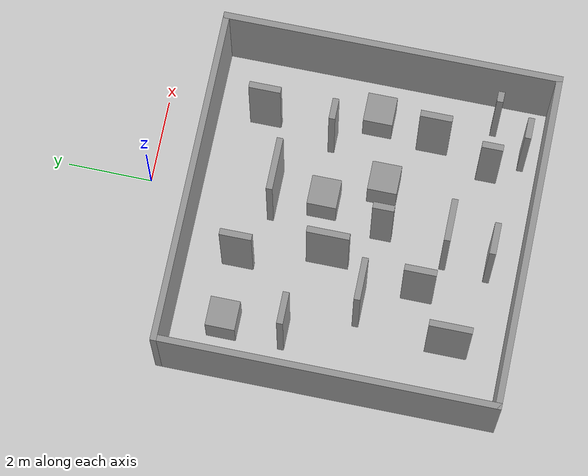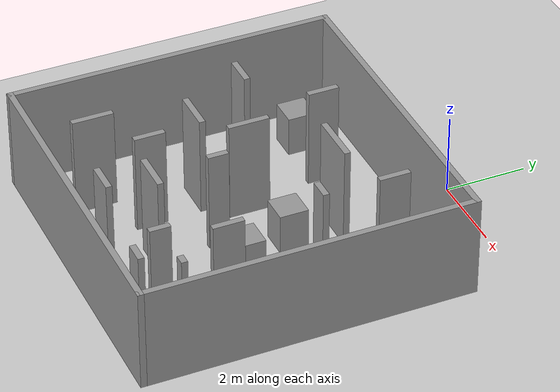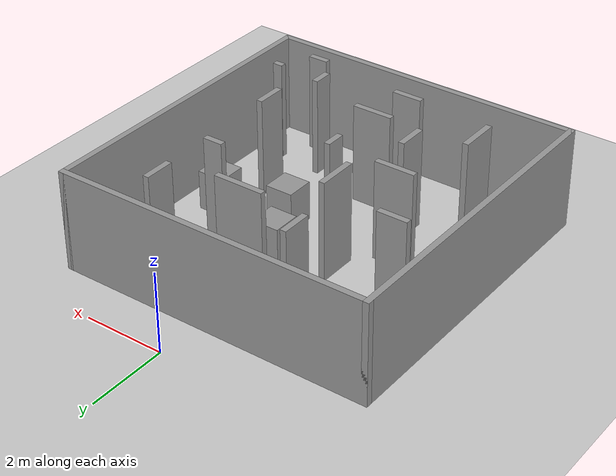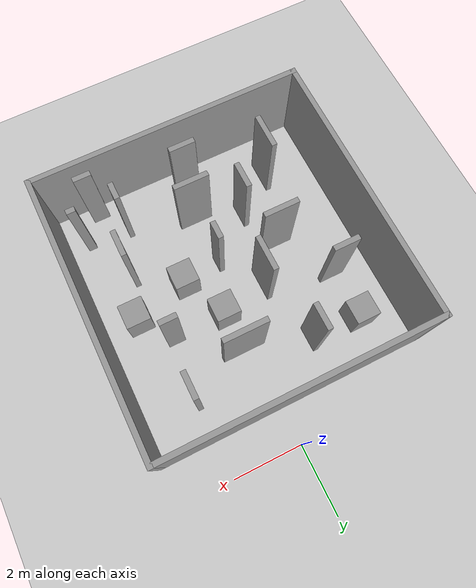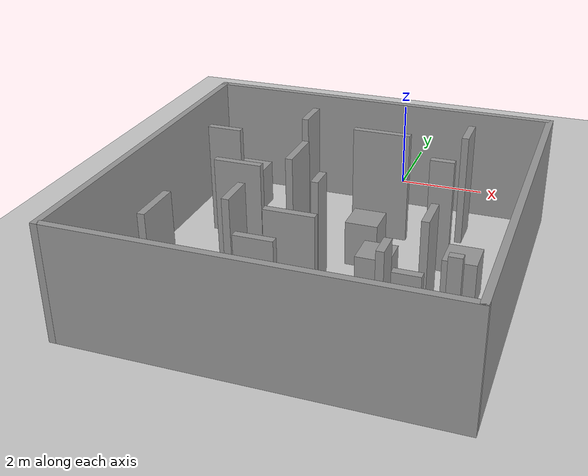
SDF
<sdf version="1.7">
 <world name="default">
  <light name="sun" type="directional">
   <pose>0 0 10 0 -0 0</pose>
   <diffuse>0.8 0.8 0.8 1</diffuse>
   <specular>0.2 0.2 0.2 1</specular>
   <attenuation>
    <range>1000</range>
    <constant>0.9</constant>
    <linear>0.01</linear>
    <quadratic>0.001</quadratic>
   </attenuation>
   <direction>-0.5 0.1 -0.9</direction>
   <spot><inner_angle>0</inner_angle><outer_angle>0</outer_angle><falloff>0</falloff></spot>
  </light>
  <model name="ground_plane">
   <static>1</static>
   <link name="link">
    <collision name="collision">
     <geometry><plane><normal>0 0 1</normal><size>100 100</size></plane></geometry>
     <surface>
      <contact><collide_bitmask>65535</collide_bitmask></contact>
      <friction><ode><mu>100</mu><mu2>50</mu2></ode></friction>
     </surface>
    </collision>
    <visual name="visual">
     <cast_shadows>0</cast_shadows>
     <geometry><plane><normal>0 0 1</normal><size>100 100</size></plane></geometry>
     <material>
      <script><uri>file://media/materials/scripts/gazebo.material</uri><name>Gazebo/Grey</name></script>
     </material>
    </visual>
   </link>
  </model>
  <gravity>0 0 -9.8</gravity>
  <magnetic_field>6e-06 2.3e-05 -4.2e-05</magnetic_field>
  <atmosphere type="adiabatic"/>
  <physics type="ode">
   <max_step_size>0.001</max_step_size>
   <real_time_factor>1</real_time_factor>
   <real_time_update_rate>1000</real_time_update_rate>
  </physics>
  <scene><ambient>0.4 0.4 0.4 1</ambient><background>0.7 0.7 0.7 1</background><shadows>1</shadows></scene>
  <spherical_coordinates>
   <surface_model>EARTH_WGS84</surface_model>
   <latitude_deg>0</latitude_deg>
   <longitude_deg>0</longitude_deg>
   <elevation>0</elevation>
   <heading_deg>0</heading_deg>
  </spherical_coordinates>
  <model name="Untitled">
   <pose>-0.375 -4.5375 0 0 -0 0</pose>
   <link name="Wall_0">
    <collision name="Wall_0_Collision">
     <geometry><box><size>8 0.15 2.5</size></box></geometry>
     <pose>0 0 1.25 0 -0 0</pose>
    </collision>
    <visual name="Wall_0_Visual">
     <pose>0 0 1.25 0 -0 0</pose>
     <geometry><box><size>8 0.15 2.5</size></box></geometry>
     <material>
      <script><uri>file://media/materials/scripts/gazebo.material</uri><name>Gazebo/Grey</name></script>
      <ambient>1 1 1 1</ambient>
     </material>
     <meta><layer>0</layer></meta>
    </visual>
    <pose>-3.925 -0.537499 0 0 -0 -1.5708</pose>
   </link>
   <link name="Wall_10">
    <collision name="Wall_10_Collision">
     <geometry><box><size>0.75 0.15 2.5</size></box></geometry>
     <pose>0 0 1.25 0 -0 0</pose>
    </collision>
    <visual name="Wall_10_Visual">
     <pose>0 0 1.25 0 -0 0</pose>
     <geometry><box><size>0.75 0.15 2.5</size></box></geometry>
     <material>
      <script><uri>file://media/materials/scripts/gazebo.material</uri><name>Gazebo/Grey</name></script>
      <ambient>1 1 1 1</ambient>
     </material>
     <meta><layer>0</layer></meta>
    </visual>
    <pose>-1.21604 2.08468 0 0 -0 -1.5708</pose>
   </link>
   <link name="Wall_12">
    <collision name="Wall_12_Collision">
     <geometry><box><size>1 0.15 2.5</size></box></geometry>
     <pose>0 0 1.25 0 -0 0</pose>
    </collision>
    <visual name="Wall_12_Visual">
     <pose>0 0 1.25 0 -0 0</pose>
     <geometry><box><size>1 0.15 2.5</size></box></geometry>
     <material>
      <script><uri>file://media/materials/scripts/gazebo.material</uri><name>Gazebo/Grey</name></script>
      <ambient>1 1 1 1</ambient>
     </material>
     <meta><layer>0</layer></meta>
    </visual>
    <pose>-0.761302 0.03577 0 0 -0 -1.5708</pose>
   </link>
   <link name="Wall_14">
    <collision name="Wall_14_Collision">
     <geometry><box><size>1.25 0.15 2.5</size></box></geometry>
     <pose>0 0 1.25 0 -0 0</pose>
    </collision>
    <visual name="Wall_14_Visual">
     <pose>0 0 1.25 0 -0 0</pose>
     <geometry><box><size>1.25 0.15 2.5</size></box></geometry>
     <material>
      <script><uri>file://media/materials/scripts/gazebo.material</uri><name>Gazebo/Grey</name></script>
      <ambient>1 1 1 1</ambient>
     </material>
     <meta><layer>0</layer></meta>
    </visual>
    <pose>0.610731 1.56264 0 0 -0 0</pose>
   </link>
   <link name="Wall_16">
    <collision name="Wall_16_Collision">
     <geometry><box><size>1 0.15 2.5</size></box></geometry>
     <pose>0 0 1.25 0 -0 0</pose>
    </collision>
    <visual name="Wall_16_Visual">
     <pose>0 0 1.25 0 -0 0</pose>
     <geometry><box><size>1 0.15 2.5</size></box></geometry>
     <material>
      <script><uri>file://media/materials/scripts/gazebo.material</uri><name>Gazebo/Grey</name></script>
      <ambient>1 1 1 1</ambient>
     </material>
     <meta><layer>0</layer></meta>
    </visual>
    <pose>0.100949 -2.63497 0 0 -0 0</pose>
   </link>
   <link name="Wall_18">
    <collision name="Wall_18_Collision">
     <geometry><box><size>0.5 0.15 2.5</size></box></geometry>
     <pose>0 0 1.25 0 -0 0</pose>
    </collision>
    <visual name="Wall_18_Visual">
     <pose>0 0 1.25 0 -0 0</pose>
     <geometry><box><size>0.5 0.15 2.5</size></box></geometry>
     <material>
      <script><uri>file://media/materials/scripts/gazebo.material</uri><name>Gazebo/Grey</name></script>
      <ambient>1 1 1 1</ambient>
     </material>
     <meta><layer>0</layer></meta>
    </visual>
    <pose>0.095711 -1.07845 0 0 -0 -1.5708</pose>
   </link>
   <link name="Wall_2">
    <collision name="Wall_2_Collision">
     <geometry><box><size>8 0.15 2.5</size></box></geometry>
     <pose>0 0 1.25 0 -0 0</pose>
    </collision>
    <visual name="Wall_2_Visual">
     <pose>0 0 1.25 0 -0 0</pose>
     <geometry><box><size>8 0.15 2.5</size></box></geometry>
     <material>
      <script><uri>file://media/materials/scripts/gazebo.material</uri><name>Gazebo/Grey</name></script>
      <ambient>1 1 1 1</ambient>
     </material>
     <meta><layer>0</layer></meta>
    </visual>
    <pose>0 3.3875 0 0 -0 0</pose>
   </link>
   <link name="Wall_20">
    <collision name="Wall_20_Collision">
     <geometry><box><size>1 0.15 2.5</size></box></geometry>
     <pose>0 0 1.25 0 -0 0</pose>
    </collision>
    <visual name="Wall_20_Visual">
     <pose>0 0 1.25 0 -0 0</pose>
     <geometry><box><size>1 0.15 2.5</size></box></geometry>
     <material>
      <script><uri>file://media/materials/scripts/gazebo.material</uri><name>Gazebo/Grey</name></script>
      <ambient>1 1 1 1</ambient>
     </material>
     <meta><layer>0</layer></meta>
    </visual>
    <pose>-1.66555 -0.903454 0 0 -0 0</pose>
   </link>
   <link name="Wall_22">
    <collision name="Wall_22_Collision">
     <geometry><box><size>0.75 0.15 2.5</size></box></geometry>
     <pose>0 0 1.25 0 -0 0</pose>
    </collision>
    <visual name="Wall_22_Visual">
     <pose>0 0 1.25 0 -0 0</pose>
     <geometry><box><size>0.75 0.15 2.5</size></box></geometry>
     <material>
      <script><uri>file://media/materials/scripts/gazebo.material</uri><name>Gazebo/Grey</name></script>
      <ambient>1 1 1 1</ambient>
     </material>
     <meta><layer>0</layer></meta>
    </visual>
    <pose>-1.19855 -2.1829 0 0 -0 -1.5708</pose>
   </link>
   <link name="Wall_24">
    <collision name="Wall_24_Collision">
     <geometry><box><size>0.75 0.15 2.5</size></box></geometry>
     <pose>0 0 1.25 0 -0 0</pose>
    </collision>
    <visual name="Wall_24_Visual">
     <pose>0 0 1.25 0 -0 0</pose>
     <geometry><box><size>0.75 0.15 2.5</size></box></geometry>
     <material>
      <script><uri>file://media/materials/scripts/gazebo.material</uri><name>Gazebo/Grey</name></script>
      <ambient>1 1 1 1</ambient>
     </material>
     <meta><layer>0</layer></meta>
    </visual>
    <pose>2.36942 2.15464 0 0 -0 -1.5708</pose>
   </link>
   <link name="Wall_26">
    <collision name="Wall_26_Collision">
     <geometry><box><size>0.5 0.15 2.5</size></box></geometry>
     <pose>0 0 1.25 0 -0 0</pose>
    </collision>
    <visual name="Wall_26_Visual">
     <pose>0 0 1.25 0 -0 0</pose>
     <geometry><box><size>0.5 0.15 2.5</size></box></geometry>
     <material>
      <script><uri>file://media/materials/scripts/gazebo.material</uri><name>Gazebo/Grey</name></script>
      <ambient>1 1 1 1</ambient>
     </material>
     <meta><layer>0</layer></meta>
    </visual>
    <pose>2.17693 0.49575 0 0 -0 3.14159</pose>
   </link>
   <link name="Wall_28">
    <collision name="Wall_28_Collision">
     <geometry><box><size>0.75 0.15 2.5</size></box></geometry>
     <pose>0 0 1.25 0 -0 0</pose>
    </collision>
    <visual name="Wall_28_Visual">
     <pose>0 0 1.25 0 -0 0</pose>
     <geometry><box><size>0.75 0.15 2.5</size></box></geometry>
     <material>
      <script><uri>file://media/materials/scripts/gazebo.material</uri><name>Gazebo/Grey</name></script>
      <ambient>1 1 1 1</ambient>
     </material>
     <meta><layer>0</layer></meta>
    </visual>
    <pose>2.47436 -1.85059 0 0 -0 -1.5708</pose>
   </link>
   <link name="Wall_3">
    <collision name="Wall_3_Collision">
     <geometry><box><size>8 0.15 2.5</size></box></geometry>
     <pose>0 0 1.25 0 -0 0</pose>
    </collision>
    <visual name="Wall_3_Visual">
     <pose>0 0 1.25 0 -0 0</pose>
     <geometry><box><size>8 0.15 2.5</size></box></geometry>
     <material>
      <script><uri>file://media/materials/scripts/gazebo.material</uri><name>Gazebo/Grey</name></script>
      <ambient>1 1 1 1</ambient>
     </material>
     <meta><layer>0</layer></meta>
    </visual>
    <pose>3.925 -0.537499 0 0 -0 -1.5708</pose>
   </link>
   <link name="Wall_30">
    <collision name="Wall_30_Collision">
     <geometry><box><size>0.75 0.15 2.5</size></box></geometry>
     <pose>0 0 1.25 0 -0 0</pose>
    </collision>
    <visual name="Wall_30_Visual">
     <pose>0 0 1.25 0 -0 0</pose>
     <geometry><box><size>0.75 0.15 2.5</size></box></geometry>
     <material>
      <script><uri>file://media/materials/scripts/gazebo.material</uri><name>Gazebo/Grey</name></script>
      <ambient>1 1 1 1</ambient>
     </material>
     <meta><layer>0</layer></meta>
    </visual>
    <pose>-0.128991 -3.70186 0 0 -0 0</pose>
   </link>
   <link name="Wall_32">
    <collision name="Wall_32_Collision">
     <geometry><box><size>0.5 0.15 2.5</size></box></geometry>
     <pose>0 0 1.25 0 -0 0</pose>
    </collision>
    <visual name="Wall_32_Visual">
     <pose>0 0 1.25 0 -0 0</pose>
     <geometry><box><size>0.5 0.15 2.5</size></box></geometry>
     <material>
      <script><uri>file://media/materials/scripts/gazebo.material</uri><name>Gazebo/Grey</name></script>
      <ambient>1 1 1 1</ambient>
     </material>
     <meta><layer>0</layer></meta>
    </visual>
    <pose>2.01962 -3.24722 0 0 -0 -1.5708</pose>
   </link>
   <link name="Wall_34">
    <collision name="Wall_34_Collision">
     <geometry><box><size>0.25 0.15 2.5</size></box></geometry>
     <pose>0 0 1.25 0 -0 0</pose>
    </collision>
    <visual name="Wall_34_Visual">
     <pose>0 0 1.25 0 -0 0</pose>
     <geometry><box><size>0.25 0.15 2.5</size></box></geometry>
     <material>
      <script><uri>file://media/materials/scripts/gazebo.material</uri><name>Gazebo/Grey</name></script>
      <ambient>1 1 1 1</ambient>
     </material>
     <meta><layer>0</layer></meta>
    </visual>
    <pose>3.2289 -3.21214 0 0 -0 3.14159</pose>
   </link>
   <link name="Wall_36">
    <collision name="Wall_36_Collision">
     <geometry><box><size>0.5 0.15 2.5</size></box></geometry>
     <pose>0 0 1.25 0 -0 0</pose>
    </collision>
    <visual name="Wall_36_Visual">
     <pose>0 0 1.25 0 -0 0</pose>
     <geometry><box><size>0.5 0.15 2.5</size></box></geometry>
     <material>
      <script><uri>file://media/materials/scripts/gazebo.material</uri><name>Gazebo/Grey</name></script>
      <ambient>1 1 1 1</ambient>
     </material>
     <meta><layer>0</layer></meta>
    </visual>
    <pose>2.61438 -3.99919 0 0 -0 0</pose>
   </link>
   <link name="Wall_4">
    <collision name="Wall_4_Collision">
     <geometry><box><size>8 0.15 2.5</size></box></geometry>
     <pose>0 0 1.25 0 -0 0</pose>
    </collision>
    <visual name="Wall_4_Visual">
     <pose>0 0 1.25 0 -0 0</pose>
     <geometry><box><size>8 0.15 2.5</size></box></geometry>
     <material>
      <script><uri>file://media/materials/scripts/gazebo.material</uri><name>Gazebo/Grey</name></script>
      <ambient>1 1 1 1</ambient>
     </material>
     <meta><layer>0</layer></meta>
    </visual>
    <pose>0 -4.4625 0 0 -0 3.14159</pose>
   </link>
   <link name="Wall_6">
    <collision name="Wall_6_Collision">
     <geometry><box><size>1 0.15 2.5</size></box></geometry>
     <pose>0 0 1.25 0 -0 0</pose>
    </collision>
    <visual name="Wall_6_Visual">
     <pose>0 0 1.25 0 -0 0</pose>
     <geometry><box><size>1 0.15 2.5</size></box></geometry>
     <material>
      <script><uri>file://media/materials/scripts/gazebo.material</uri><name>Gazebo/Grey</name></script>
      <ambient>1 1 1 1</ambient>
     </material>
     <meta><layer>0</layer></meta>
    </visual>
    <pose>-2.3529 -3.09495 0 0 -0 -1.5708</pose>
   </link>
   <link name="Wall_8">
    <collision name="Wall_8_Collision">
     <geometry><box><size>0.75 0.15 2.5</size></box></geometry>
     <pose>0 0 1.25 0 -0 0</pose>
    </collision>
    <visual name="Wall_8_Visual">
     <pose>0 0 1.25 0 -0 0</pose>
     <geometry><box><size>0.75 0.15 2.5</size></box></geometry>
     <material>
      <script><uri>file://media/materials/scripts/gazebo.material</uri><name>Gazebo/Grey</name></script>
      <ambient>1 1 1 1</ambient>
     </material>
     <meta><layer>0</layer></meta>
    </visual>
    <pose>-2.68254 0.688141 0 0 -0 0</pose>
   </link>
   <static>1</static>
  </model>
  <model name="unit_box">
   <link name="link">
    <inertial>
     <mass>1</mass>
     <inertia>
      <ixx>0.166667</ixx>
      <ixy>0</ixy>
      <ixz>0</ixz>
      <iyy>0.166667</iyy>
      <iyz>0</iyz>
      <izz>0.166667</izz>
     </inertia>
    </inertial>
    <visual name="visual">
     <geometry><box><size>0.7 0.7 1</size></box></geometry>
     <material>
      <script><name>Gazebo/Grey</name><uri>file://media/materials/scripts/gazebo.material</uri></script>
      <shader type="pixel"><normal_map>__default__</normal_map></shader>
      <ambient>0.3 0.3 0.3 1</ambient>
      <diffuse>0.7 0.7 0.7 1</diffuse>
      <specular>0.01 0.01 0.01 1</specular>
      <emissive>0 0 0 1</emissive>
     </material>
    </visual>
    <collision name="collision">
     <geometry><box><size>1 1 1</size></box></geometry>
     <surface>
      <friction>
       <ode><mu>1</mu><mu2>1</mu2><fdir1>0 0 0</fdir1><slip1>0</slip1><slip2>0</slip2></ode>
       <torsional>
        <coefficient>1</coefficient>
        <patch_radius>0</patch_radius>
        <surface_radius>0</surface_radius>
        <use_patch_radius>1</use_patch_radius>
        <ode><slip>0</slip></ode>
       </torsional>
      </friction>
      <bounce><restitution_coefficient>0</restitution_coefficient><threshold>1e+06</threshold></bounce>
      <contact>
       <collide_without_contact>0</collide_without_contact>
       <collide_without_contact_bitmask>1</collide_without_contact_bitmask>
       <collide_bitmask>1</collide_bitmask>
       <ode>
        <soft_cfm>0</soft_cfm>
        <soft_erp>0.2</soft_erp>
        <kp>1e+13</kp>
        <kd>1</kd>
        <max_vel>0.01</max_vel>
        <min_depth>0</min_depth>
       </ode>
       <bullet>
        <split_impulse>1</split_impulse>
        <split_impulse_penetration_threshold>-0.01</split_impulse_penetration_threshold>
        <soft_cfm>0</soft_cfm>
        <soft_erp>0.2</soft_erp>
        <kp>1e+13</kp>
        <kd>1</kd>
       </bullet>
      </contact>
     </surface>
    </collision>
   </link>
   <static>0</static>
   <pose>0.87612 -5.45678 0.5 0 -0 0</pose>
  </model>
  <model name="unit_box_clone">
   <link name="link">
    <inertial>
     <mass>1</mass>
     <inertia>
      <ixx>0.166667</ixx>
      <ixy>0</ixy>
      <ixz>0</ixz>
      <iyy>0.166667</iyy>
      <iyz>0</iyz>
      <izz>0.166667</izz>
     </inertia>
    </inertial>
    <visual name="visual">
     <geometry><box><size>0.7 0.7 1</size></box></geometry>
     <material>
      <script><name>Gazebo/Grey</name><uri>file://media/materials/scripts/gazebo.material</uri></script>
      <shader type="pixel"><normal_map>__default__</normal_map></shader>
      <ambient>0.3 0.3 0.3 1</ambient>
      <diffuse>0.7 0.7 0.7 1</diffuse>
      <specular>0.01 0.01 0.01 1</specular>
      <emissive>0 0 0 1</emissive>
     </material>
    </visual>
    <collision name="collision">
     <geometry><box><size>1 1 1</size></box></geometry>
     <surface>
      <friction>
       <ode><mu>1</mu><mu2>1</mu2><fdir1>0 0 0</fdir1><slip1>0</slip1><slip2>0</slip2></ode>
       <torsional>
        <coefficient>1</coefficient>
        <patch_radius>0</patch_radius>
        <surface_radius>0</surface_radius>
        <use_patch_radius>1</use_patch_radius>
        <ode><slip>0</slip></ode>
       </torsional>
      </friction>
      <bounce><restitution_coefficient>0</restitution_coefficient><threshold>1e+06</threshold></bounce>
      <contact>
       <collide_without_contact>0</collide_without_contact>
       <collide_without_contact_bitmask>1</collide_without_contact_bitmask>
       <collide_bitmask>1</collide_bitmask>
       <ode>
        <soft_cfm>0</soft_cfm>
        <soft_erp>0.2</soft_erp>
        <kp>1e+13</kp>
        <kd>1</kd>
        <max_vel>0.01</max_vel>
        <min_depth>0</min_depth>
       </ode>
       <bullet>
        <split_impulse>1</split_impulse>
        <split_impulse_penetration_threshold>-0.01</split_impulse_penetration_threshold>
        <soft_cfm>0</soft_cfm>
        <soft_erp>0.2</soft_erp>
        <kp>1e+13</kp>
        <kd>1</kd>
       </bullet>
      </contact>
     </surface>
    </collision>
   </link>
   <static>0</static>
   <pose>0.252424 -4.13999 0.5 0 -0 0</pose>
  </model>
  <model name="unit_box_clone_0">
   <link name="link">
    <inertial>
     <mass>1</mass>
     <inertia>
      <ixx>0.166667</ixx>
      <ixy>0</ixy>
      <ixz>0</ixz>
      <iyy>0.166667</iyy>
      <iyz>0</iyz>
      <izz>0.166667</izz>
     </inertia>
    </inertial>
    <visual name="visual">
     <geometry><box><size>0.7 0.7 1</size></box></geometry>
     <material>
      <script><name>Gazebo/Grey</name><uri>file://media/materials/scripts/gazebo.material</uri></script>
      <shader type="pixel"><normal_map>__default__</normal_map></shader>
      <ambient>0.3 0.3 0.3 1</ambient>
      <diffuse>0.7 0.7 0.7 1</diffuse>
      <specular>0.01 0.01 0.01 1</specular>
      <emissive>0 0 0 1</emissive>
     </material>
    </visual>
    <collision name="collision">
     <geometry><box><size>1 1 1</size></box></geometry>
     <surface>
      <friction>
       <ode><mu>1</mu><mu2>1</mu2><fdir1>0 0 0</fdir1><slip1>0</slip1><slip2>0</slip2></ode>
       <torsional>
        <coefficient>1</coefficient>
        <patch_radius>0</patch_radius>
        <surface_radius>0</surface_radius>
        <use_patch_radius>1</use_patch_radius>
        <ode><slip>0</slip></ode>
       </torsional>
      </friction>
      <bounce><restitution_coefficient>0</restitution_coefficient><threshold>1e+06</threshold></bounce>
      <contact>
       <collide_without_contact>0</collide_without_contact>
       <collide_without_contact_bitmask>1</collide_without_contact_bitmask>
       <collide_bitmask>1</collide_bitmask>
       <ode>
        <soft_cfm>0</soft_cfm>
        <soft_erp>0.2</soft_erp>
        <kp>1e+13</kp>
        <kd>1</kd>
        <max_vel>0.01</max_vel>
        <min_depth>0</min_depth>
       </ode>
       <bullet>
        <split_impulse>1</split_impulse>
        <split_impulse_penetration_threshold>-0.01</split_impulse_penetration_threshold>
        <soft_cfm>0</soft_cfm>
        <soft_erp>0.2</soft_erp>
        <kp>1e+13</kp>
        <kd>1</kd>
       </bullet>
      </contact>
     </surface>
    </collision>
   </link>
   <static>0</static>
   <pose>2.51713 -5.03316 0.5 0 -0 0</pose>
  </model>
  <model name="unit_box_clone_1">
   <link name="link">
    <inertial>
     <mass>1</mass>
     <inertia>
      <ixx>0.166667</ixx>
      <ixy>0</ixy>
      <ixz>0</ixz>
      <iyy>0.166667</iyy>
      <iyz>0</iyz>
      <izz>0.166667</izz>
     </inertia>
    </inertial>
    <visual name="visual">
     <geometry><box><size>0.7 0.7 1</size></box></geometry>
     <material>
      <script><name>Gazebo/Grey</name><uri>file://media/materials/scripts/gazebo.material</uri></script>
      <shader type="pixel"><normal_map>__default__</normal_map></shader>
      <ambient>0.3 0.3 0.3 1</ambient>
      <diffuse>0.7 0.7 0.7 1</diffuse>
      <specular>0.01 0.01 0.01 1</specular>
      <emissive>0 0 0 1</emissive>
     </material>
    </visual>
    <collision name="collision">
     <geometry><box><size>1 1 1</size></box></geometry>
     <surface>
      <friction>
       <ode><mu>1</mu><mu2>1</mu2><fdir1>0 0 0</fdir1><slip1>0</slip1><slip2>0</slip2></ode>
       <torsional>
        <coefficient>1</coefficient>
        <patch_radius>0</patch_radius>
        <surface_radius>0</surface_radius>
        <use_patch_radius>1</use_patch_radius>
        <ode><slip>0</slip></ode>
       </torsional>
      </friction>
      <bounce><restitution_coefficient>0</restitution_coefficient><threshold>1e+06</threshold></bounce>
      <contact>
       <collide_without_contact>0</collide_without_contact>
       <collide_without_contact_bitmask>1</collide_without_contact_bitmask>
       <collide_bitmask>1</collide_bitmask>
       <ode>
        <soft_cfm>0</soft_cfm>
        <soft_erp>0.2</soft_erp>
        <kp>1e+13</kp>
        <kd>1</kd>
        <max_vel>0.01</max_vel>
        <min_depth>0</min_depth>
       </ode>
       <bullet>
        <split_impulse>1</split_impulse>
        <split_impulse_penetration_threshold>-0.01</split_impulse_penetration_threshold>
        <soft_cfm>0</soft_cfm>
        <soft_erp>0.2</soft_erp>
        <kp>1e+13</kp>
        <kd>1</kd>
       </bullet>
      </contact>
     </surface>
    </collision>
   </link>
   <static>0</static>
   <pose>-3.08399 -2.42663 0.5 0 -0 0</pose>
  </model>
 </world>
</sdf>
